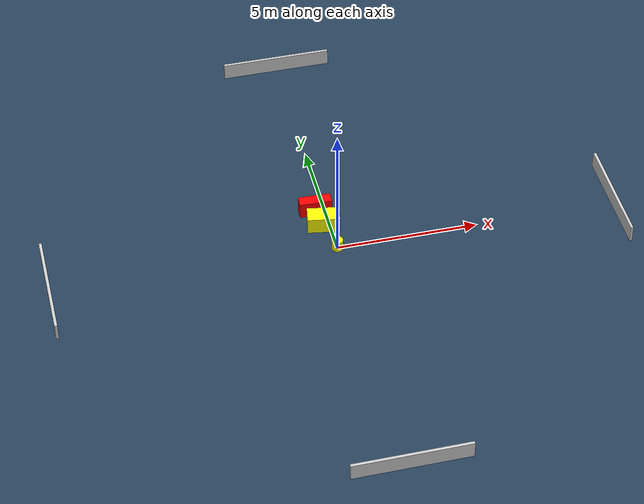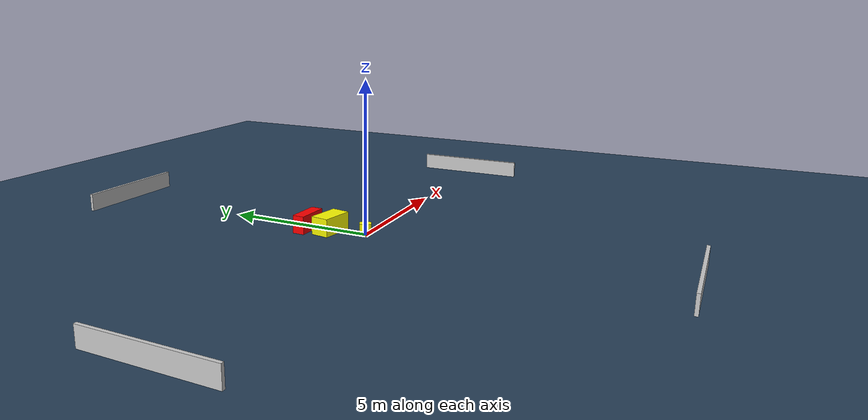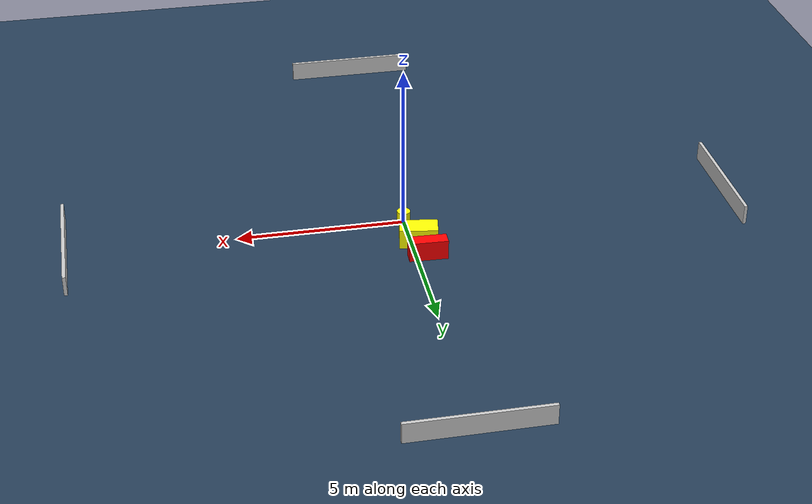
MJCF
<?xml version="1.0" ?>
<mujoco model="generated_environment">
  <option timestep="0.01" integrator="RK4" cone="elliptic"/>
  <default>
    <geom density="1"/>
  </default>
  <asset>
    <texture builtin="gradient" height="3072" name="skybox" rgb1="0.3 0.5 0.7" rgb2="0 0 0" type="skybox" width="512"/>
    <texture builtin="checker" height="300" name="groundplane" rgb1="0.2 0.3 0.4" rgb2="0.1 0.2 0.3" type="2d" width="300"/>
    <material name="groundplane" reflectance="0.2" texrepeat="5 5" texture="groundplane"/>
  </asset>
  <worldbody>
    <light dir="0 0 -1" directional="true" pos="0 0 1.5"/>
    <geom condim="3" friction="0.5 0.005 0.001" material="groundplane" name="floor" pos="0 0 0" size="0 0 0.05" type="plane"/>
    <body name="walls">
      <geom name="wall_1" condim="4" pos="-10.0 0.0 0.3" rgba="0.800000011920929 0.800000011920929 0.800000011920929 1.0" size="0.05 2.0 0.3" type="box"/>
      <geom name="wall_2" condim="4" pos="10.0 0.0 0.3" rgba="0.800000011920929 0.800000011920929 0.800000011920929 1.0" size="0.05 2.0 0.3" type="box"/>
      <geom name="wall_3" condim="4" pos="0.0 -10.0 0.3" rgba="0.800000011920929 0.800000011920929 0.800000011920929 1.0" size="2.0 0.05 0.3" type="box"/>
      <geom name="wall_4" condim="4" pos="0.0 10.0 0.3" rgba="0.800000011920929 0.800000011920929 0.800000011920929 1.0" size="2.0 0.05 0.3" type="box"/>
    </body>
    <body name="robot">
      <joint name="joint_x" type="slide" pos="0 0 0" axis="1 0 0"/>
      <joint name="joint_y" type="slide" pos="0 0 0" axis="0 1 0"/>
      <geom name="robot" type="cylinder" pos="0.0 0.0 0.2" size="0.2 0.2 0.0" mass="5.0" friction="1.0 0.005 0.0001" condim="4" rgba="1.0 1.0 0.0 1.0"/>
    </body>
    <body name="obstacle_1_movable">
      <geom name="obstacle_1_movable" condim="4" pos="-0.21880619856840522 1.1833579620103227 0.3" euler="0 0 170.51976056087975" friction="0.0 0.005 0.001" rgba="1.0 1.0 0.0 1.0" size="0.5643441040641792 0.3101254532763674 0.3" type="box" mass="0.1"/>
      <joint type="free"/>
    </body>
    <body name="obstacle_2_static">
      <geom name="obstacle_2_static" condim="4" pos="-0.3362676168916516 1.9669822246221076 0.3" euler="0 0 88.09564138837764" friction="0.0 0.005 0.001" rgba="1.0 0.0 0.0 1.0" size="0.20066658086565156 0.5710832975562513 0.3" type="box"/>
    </body>
  </worldbody>
  <actuator>
    <motor name="actuator_x" joint="joint_x" gear="1" ctrlrange="-1 1"/>
    <motor name="actuator_y" joint="joint_y" gear="1" ctrlrange="-1 1"/>
  </actuator>
</mujoco>
